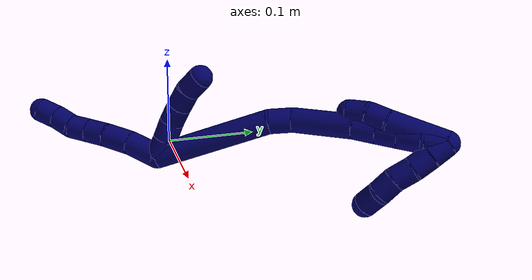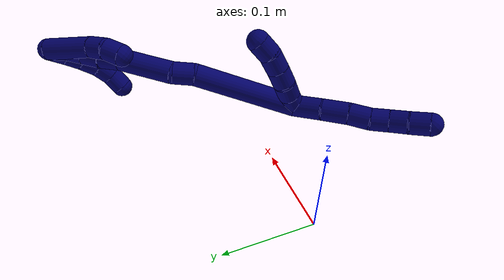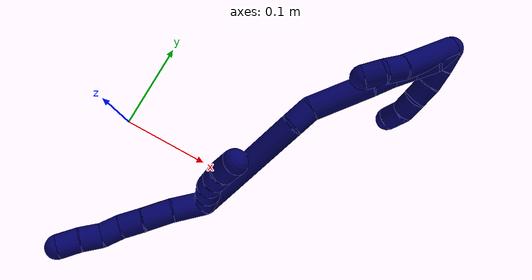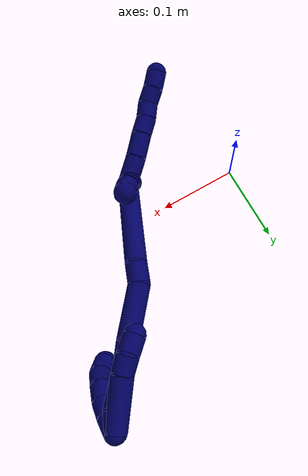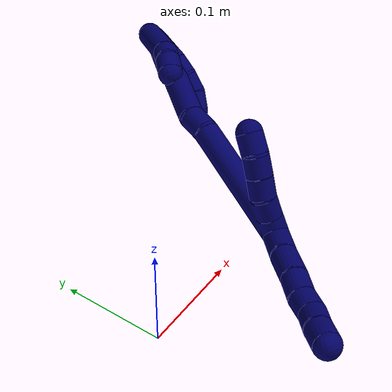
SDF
<sdf version="1.7">
 <world name="default">
  <model name="7">
   <static>0</static>
   <link name="7">
    <collision name="collision-cylinder-e_1_2_8">
     <pose>-0.002982 -0.013951 -0.009524 2.16978 -0.174723 -0.32868</pose>
     <geometry><cylinder><radius>0.0125</radius><length>0.034307</length></cylinder></geometry>
     <surface>
      <friction><ode><mu>1.16</mu><mu2>1.16</mu2><slip1>0</slip1><slip2>0</slip2></ode></friction>
      <contact><ode><kp>1e+06</kp><kd>1</kd><max_vel>0</max_vel><min_depth>0.001</min_depth></ode></contact>
     </surface>
    </collision>
    <visual name="visual-cylinder-e_1_2_8">
     <pose>-0.002982 -0.013951 -0.009524 2.16978 -0.174723 -0.32868</pose>
     <geometry><cylinder><radius>0.0125</radius><length>0.034307</length></cylinder></geometry>
     <material><ambient>0.003922 0 0.403922 1</ambient></material>
    </visual>
    <collision name="collision-cylinder-e_2_8_9">
     <pose>-0.007451 -0.03924 -0.028574 2.26961 -0.100115 -0.214247</pose>
     <geometry><cylinder><radius>0.0125</radius><length>0.029766</length></cylinder></geometry>
     <surface>
      <friction><ode><mu>1.16</mu><mu2>1.16</mu2><slip1>0</slip1><slip2>0</slip2></ode></friction>
      <contact><ode><kp>1e+06</kp><kd>1</kd><max_vel>0</max_vel><min_depth>0.001</min_depth></ode></contact>
     </surface>
    </collision>
    <visual name="visual-cylinder-e_2_8_9">
     <pose>-0.007451 -0.03924 -0.028574 2.26961 -0.100115 -0.214247</pose>
     <geometry><cylinder><radius>0.0125</radius><length>0.029766</length></cylinder></geometry>
     <material><ambient>0.003922 0 0.403922 1</ambient></material>
    </visual>
    <collision name="collision-cylinder-e_3_9_10">
     <pose>-0.010606 -0.058702 -0.04625 2.35774 -0.143868 -0.345223</pose>
     <geometry><cylinder><radius>0.0125</radius><length>0.023255</length></cylinder></geometry>
     <surface>
      <friction><ode><mu>1.16</mu><mu2>1.16</mu2><slip1>0</slip1><slip2>0</slip2></ode></friction>
      <contact><ode><kp>1e+06</kp><kd>1</kd><max_vel>0</max_vel><min_depth>0.001</min_depth></ode></contact>
     </surface>
    </collision>
    <visual name="visual-cylinder-e_3_9_10">
     <pose>-0.010606 -0.058702 -0.04625 2.35774 -0.143868 -0.345223</pose>
     <geometry><cylinder><radius>0.0125</radius><length>0.023255</length></cylinder></geometry>
     <material><ambient>0.003922 0 0.403922 1</ambient></material>
    </visual>
    <collision name="collision-cylinder-e_4_10_11">
     <pose>-0.012115 -0.0745 -0.061132 2.29092 0.015446 0.034096</pose>
     <geometry><cylinder><radius>0.0125</radius><length>0.02042</length></cylinder></geometry>
     <surface>
      <friction><ode><mu>1.16</mu><mu2>1.16</mu2><slip1>0</slip1><slip2>0</slip2></ode></friction>
      <contact><ode><kp>1e+06</kp><kd>1</kd><max_vel>0</max_vel><min_depth>0.001</min_depth></ode></contact>
     </surface>
    </collision>
    <visual name="visual-cylinder-e_4_10_11">
     <pose>-0.012115 -0.0745 -0.061132 2.29092 0.015446 0.034096</pose>
     <geometry><cylinder><radius>0.0125</radius><length>0.02042</length></cylinder></geometry>
     <material><ambient>0.003922 0 0.403922 1</ambient></material>
    </visual>
    <collision name="collision-cylinder-e_5_11_12">
     <pose>-0.013996 -0.091082 -0.072869 2.0827 -0.196917 -0.334448</pose>
     <geometry><cylinder><radius>0.0125</radius><length>0.020839</length></cylinder></geometry>
     <surface>
      <friction><ode><mu>1.16</mu><mu2>1.16</mu2><slip1>0</slip1><slip2>0</slip2></ode></friction>
      <contact><ode><kp>1e+06</kp><kd>1</kd><max_vel>0</max_vel><min_depth>0.001</min_depth></ode></contact>
     </surface>
    </collision>
    <visual name="visual-cylinder-e_5_11_12">
     <pose>-0.013996 -0.091082 -0.072869 2.0827 -0.196917 -0.334448</pose>
     <geometry><cylinder><radius>0.0125</radius><length>0.020839</length></cylinder></geometry>
     <material><ambient>0.003922 0 0.403922 1</ambient></material>
    </visual>
    <collision name="collision-cylinder-e_6_12_6">
     <pose>-0.017005 -0.108892 -0.083746 2.15388 -0.090795 -0.168372</pose>
     <geometry><cylinder><radius>0.0125</radius><length>0.021415</length></cylinder></geometry>
     <surface>
      <friction><ode><mu>1.16</mu><mu2>1.16</mu2><slip1>0</slip1><slip2>0</slip2></ode></friction>
      <contact><ode><kp>1e+06</kp><kd>1</kd><max_vel>0</max_vel><min_depth>0.001</min_depth></ode></contact>
     </surface>
    </collision>
    <visual name="visual-cylinder-e_6_12_6">
     <pose>-0.017005 -0.108892 -0.083746 2.15388 -0.090795 -0.168372</pose>
     <geometry><cylinder><radius>0.0125</radius><length>0.021415</length></cylinder></geometry>
     <material><ambient>0.003922 0 0.403922 1</ambient></material>
    </visual>
    <collision name="collision-cylinder-e_1_2_13">
     <pose>-0.001544 -0.004335 0.008878 0.454259 -0.154975 -0.035885</pose>
     <geometry><cylinder><radius>0.0125</radius><length>0.02</length></cylinder></geometry>
     <surface>
      <friction><ode><mu>1.16</mu><mu2>1.16</mu2><slip1>0</slip1><slip2>0</slip2></ode></friction>
      <contact><ode><kp>1e+06</kp><kd>1</kd><max_vel>0</max_vel><min_depth>0.001</min_depth></ode></contact>
     </surface>
    </collision>
    <visual name="visual-cylinder-e_1_2_13">
     <pose>-0.001544 -0.004335 0.008878 0.454259 -0.154975 -0.035885</pose>
     <geometry><cylinder><radius>0.0125</radius><length>0.02</length></cylinder></geometry>
     <material><ambient>0.003922 0 0.403922 1</ambient></material>
    </visual>
    <collision name="collision-cylinder-e_2_13_14">
     <pose>-0.004542 -0.013517 0.026382 0.511884 -0.146027 -0.038276</pose>
     <geometry><cylinder><radius>0.0125</radius><length>0.02</length></cylinder></geometry>
     <surface>
      <friction><ode><mu>1.16</mu><mu2>1.16</mu2><slip1>0</slip1><slip2>0</slip2></ode></friction>
      <contact><ode><kp>1e+06</kp><kd>1</kd><max_vel>0</max_vel><min_depth>0.001</min_depth></ode></contact>
     </surface>
    </collision>
    <visual name="visual-cylinder-e_2_13_14">
     <pose>-0.004542 -0.013517 0.026382 0.511884 -0.146027 -0.038276</pose>
     <geometry><cylinder><radius>0.0125</radius><length>0.02</length></cylinder></geometry>
     <material><ambient>0.003922 0 0.403922 1</ambient></material>
    </visual>
    <collision name="collision-cylinder-e_3_14_15">
     <pose>-0.005629 -0.021986 0.04432 0.371025 0.036847 0.006916</pose>
     <geometry><cylinder><radius>0.0125</radius><length>0.02</length></cylinder></geometry>
     <surface>
      <friction><ode><mu>1.16</mu><mu2>1.16</mu2><slip1>0</slip1><slip2>0</slip2></ode></friction>
      <contact><ode><kp>1e+06</kp><kd>1</kd><max_vel>0</max_vel><min_depth>0.001</min_depth></ode></contact>
     </surface>
    </collision>
    <visual name="visual-cylinder-e_3_14_15">
     <pose>-0.005629 -0.021986 0.04432 0.371025 0.036847 0.006916</pose>
     <geometry><cylinder><radius>0.0125</radius><length>0.02</length></cylinder></geometry>
     <material><ambient>0.003922 0 0.403922 1</ambient></material>
    </visual>
    <collision name="collision-cylinder-e_4_15_16">
     <pose>-0.005055 -0.028888 0.063079 0.334133 0.020511 0.003459</pose>
     <geometry><cylinder><radius>0.0125</radius><length>0.02</length></cylinder></geometry>
     <surface>
      <friction><ode><mu>1.16</mu><mu2>1.16</mu2><slip1>0</slip1><slip2>0</slip2></ode></friction>
      <contact><ode><kp>1e+06</kp><kd>1</kd><max_vel>0</max_vel><min_depth>0.001</min_depth></ode></contact>
     </surface>
    </collision>
    <visual name="visual-cylinder-e_4_15_16">
     <pose>-0.005055 -0.028888 0.063079 0.334133 0.020511 0.003459</pose>
     <geometry><cylinder><radius>0.0125</radius><length>0.02</length></cylinder></geometry>
     <material><ambient>0.003922 0 0.403922 1</ambient></material>
    </visual>
    <collision name="collision-cylinder-e_5_16_5">
     <pose>-0.004735 -0.033035 0.082485 0.086876 0.011521 0.000501</pose>
     <geometry><cylinder><radius>0.0125</radius><length>0.02</length></cylinder></geometry>
     <surface>
      <friction><ode><mu>1.16</mu><mu2>1.16</mu2><slip1>0</slip1><slip2>0</slip2></ode></friction>
      <contact><ode><kp>1e+06</kp><kd>1</kd><max_vel>0</max_vel><min_depth>0.001</min_depth></ode></contact>
     </surface>
    </collision>
    <visual name="visual-cylinder-e_5_16_5">
     <pose>-0.004735 -0.033035 0.082485 0.086876 0.011521 0.000501</pose>
     <geometry><cylinder><radius>0.0125</radius><length>0.02</length></cylinder></geometry>
     <material><ambient>0.003922 0 0.403922 1</ambient></material>
    </visual>
    <collision name="collision-cylinder-e_1_2_17">
     <pose>-0.012243 0.021179 0.055913 -0.362079 -0.201976 0.037092</pose>
     <geometry><cylinder><radius>0.0125</radius><length>0.122061</length></cylinder></geometry>
     <surface>
      <friction><ode><mu>1.16</mu><mu2>1.16</mu2><slip1>0</slip1><slip2>0</slip2></ode></friction>
      <contact><ode><kp>1e+06</kp><kd>1</kd><max_vel>0</max_vel><min_depth>0.001</min_depth></ode></contact>
     </surface>
    </collision>
    <visual name="visual-cylinder-e_1_2_17">
     <pose>-0.012243 0.021179 0.055913 -0.362079 -0.201976 0.037092</pose>
     <geometry><cylinder><radius>0.0125</radius><length>0.122061</length></cylinder></geometry>
     <material><ambient>0.003922 0 0.403922 1</ambient></material>
    </visual>
    <collision name="collision-cylinder-e_2_17_18">
     <pose>-0.027652 0.049097 0.121179 -0.624426 -0.268013 0.086973</pose>
     <geometry><cylinder><radius>0.0125</radius><length>0.023908</length></cylinder></geometry>
     <surface>
      <friction><ode><mu>1.16</mu><mu2>1.16</mu2><slip1>0</slip1><slip2>0</slip2></ode></friction>
      <contact><ode><kp>1e+06</kp><kd>1</kd><max_vel>0</max_vel><min_depth>0.001</min_depth></ode></contact>
     </surface>
    </collision>
    <visual name="visual-cylinder-e_2_17_18">
     <pose>-0.027652 0.049097 0.121179 -0.624426 -0.268013 0.086973</pose>
     <geometry><cylinder><radius>0.0125</radius><length>0.023908</length></cylinder></geometry>
     <material><ambient>0.003922 0 0.403922 1</ambient></material>
    </visual>
    <collision name="collision-cylinder-e_3_18_19">
     <pose>-0.028765 0.075965 0.154365 -0.701321 0.06568 -0.024032</pose>
     <geometry><cylinder><radius>0.0125</radius><length>0.062529</length></cylinder></geometry>
     <surface>
      <friction><ode><mu>1.16</mu><mu2>1.16</mu2><slip1>0</slip1><slip2>0</slip2></ode></friction>
      <contact><ode><kp>1e+06</kp><kd>1</kd><max_vel>0</max_vel><min_depth>0.001</min_depth></ode></contact>
     </surface>
    </collision>
    <visual name="visual-cylinder-e_3_18_19">
     <pose>-0.028765 0.075965 0.154365 -0.701321 0.06568 -0.024032</pose>
     <geometry><cylinder><radius>0.0125</radius><length>0.062529</length></cylinder></geometry>
     <material><ambient>0.003922 0 0.403922 1</ambient></material>
    </visual>
    <collision name="collision-cylinder-e_4_19_20">
     <pose>-0.026671 0.104741 0.186208 -0.823658 0.003595 -0.00157</pose>
     <geometry><cylinder><radius>0.0125</radius><length>0.023572</length></cylinder></geometry>
     <surface>
      <friction><ode><mu>1.16</mu><mu2>1.16</mu2><slip1>0</slip1><slip2>0</slip2></ode></friction>
      <contact><ode><kp>1e+06</kp><kd>1</kd><max_vel>0</max_vel><min_depth>0.001</min_depth></ode></contact>
     </surface>
    </collision>
    <visual name="visual-cylinder-e_4_19_20">
     <pose>-0.026671 0.104741 0.186208 -0.823658 0.003595 -0.00157</pose>
     <geometry><cylinder><radius>0.0125</radius><length>0.023572</length></cylinder></geometry>
     <material><ambient>0.003922 0 0.403922 1</ambient></material>
    </visual>
    <collision name="collision-cylinder-e_5_20_21">
     <pose>-0.025615 0.121211 0.202039 -0.785487 0.091384 -0.037879</pose>
     <geometry><cylinder><radius>0.0125</radius><length>0.022218</length></cylinder></geometry>
     <surface>
      <friction><ode><mu>1.16</mu><mu2>1.16</mu2><slip1>0</slip1><slip2>0</slip2></ode></friction>
      <contact><ode><kp>1e+06</kp><kd>1</kd><max_vel>0</max_vel><min_depth>0.001</min_depth></ode></contact>
     </surface>
    </collision>
    <visual name="visual-cylinder-e_5_20_21">
     <pose>-0.025615 0.121211 0.202039 -0.785487 0.091384 -0.037879</pose>
     <geometry><cylinder><radius>0.0125</radius><length>0.022218</length></cylinder></geometry>
     <material><ambient>0.003922 0 0.403922 1</ambient></material>
    </visual>
    <collision name="collision-cylinder-e_6_21_22">
     <pose>-0.023437 0.137199 0.218222 -0.77354 0.09929 -0.040467</pose>
     <geometry><cylinder><radius>0.0125</radius><length>0.023489</length></cylinder></geometry>
     <surface>
      <friction><ode><mu>1.16</mu><mu2>1.16</mu2><slip1>0</slip1><slip2>0</slip2></ode></friction>
      <contact><ode><kp>1e+06</kp><kd>1</kd><max_vel>0</max_vel><min_depth>0.001</min_depth></ode></contact>
     </surface>
    </collision>
    <visual name="visual-cylinder-e_6_21_22">
     <pose>-0.023437 0.137199 0.218222 -0.77354 0.09929 -0.040467</pose>
     <geometry><cylinder><radius>0.0125</radius><length>0.023489</length></cylinder></geometry>
     <material><ambient>0.003922 0 0.403922 1</ambient></material>
    </visual>
    <collision name="collision-cylinder-e_7_22_1">
     <pose>-0.024152 0.153111 0.234323 -0.785849 -0.169949 0.070581</pose>
     <geometry><cylinder><radius>0.0125</radius><length>0.022223</length></cylinder></geometry>
     <surface>
      <friction><ode><mu>1.16</mu><mu2>1.16</mu2><slip1>0</slip1><slip2>0</slip2></ode></friction>
      <contact><ode><kp>1e+06</kp><kd>1</kd><max_vel>0</max_vel><min_depth>0.001</min_depth></ode></contact>
     </surface>
    </collision>
    <visual name="visual-cylinder-e_7_22_1">
     <pose>-0.024152 0.153111 0.234323 -0.785849 -0.169949 0.070581</pose>
     <geometry><cylinder><radius>0.0125</radius><length>0.022223</length></cylinder></geometry>
     <material><ambient>0.003922 0 0.403922 1</ambient></material>
    </visual>
    <collision name="collision-cylinder-e_1_1_23">
     <pose>-0.025853 0.136396 0.225649 2.16181 0.006058 0.011361</pose>
     <geometry><cylinder><radius>0.0125</radius><length>0.05892</length></cylinder></geometry>
     <surface>
      <friction><ode><mu>1.16</mu><mu2>1.16</mu2><slip1>0</slip1><slip2>0</slip2></ode></friction>
      <contact><ode><kp>1e+06</kp><kd>1</kd><max_vel>0</max_vel><min_depth>0.001</min_depth></ode></contact>
     </surface>
    </collision>
    <visual name="visual-cylinder-e_1_1_23">
     <pose>-0.025853 0.136396 0.225649 2.16181 0.006058 0.011361</pose>
     <geometry><cylinder><radius>0.0125</radius><length>0.05892</length></cylinder></geometry>
     <material><ambient>0.003922 0 0.403922 1</ambient></material>
    </visual>
    <collision name="collision-cylinder-e_2_23_24">
     <pose>-0.027322 0.103611 0.203322 2.18837 -0.16005 -0.308189</pose>
     <geometry><cylinder><radius>0.0125</radius><length>0.020682</length></cylinder></geometry>
     <surface>
      <friction><ode><mu>1.16</mu><mu2>1.16</mu2><slip1>0</slip1><slip2>0</slip2></ode></friction>
      <contact><ode><kp>1e+06</kp><kd>1</kd><max_vel>0</max_vel><min_depth>0.001</min_depth></ode></contact>
     </surface>
    </collision>
    <visual name="visual-cylinder-e_2_23_24">
     <pose>-0.027322 0.103611 0.203322 2.18837 -0.16005 -0.308189</pose>
     <geometry><cylinder><radius>0.0125</radius><length>0.020682</length></cylinder></geometry>
     <material><ambient>0.003922 0 0.403922 1</ambient></material>
    </visual>
    <collision name="collision-cylinder-e_3_24_4">
     <pose>-0.030967 0.089146 0.189517 2.48038 -0.197059 -0.560863</pose>
     <geometry><cylinder><radius>0.0125</radius><length>0.020398</length></cylinder></geometry>
     <surface>
      <friction><ode><mu>1.16</mu><mu2>1.16</mu2><slip1>0</slip1><slip2>0</slip2></ode></friction>
      <contact><ode><kp>1e+06</kp><kd>1</kd><max_vel>0</max_vel><min_depth>0.001</min_depth></ode></contact>
     </surface>
    </collision>
    <visual name="visual-cylinder-e_3_24_4">
     <pose>-0.030967 0.089146 0.189517 2.48038 -0.197059 -0.560863</pose>
     <geometry><cylinder><radius>0.0125</radius><length>0.020398</length></cylinder></geometry>
     <material><ambient>0.003922 0 0.403922 1</ambient></material>
    </visual>
    <collision name="collision-cylinder-e_1_1_25">
     <pose>-0.021351 0.16073 0.233227 3.12702 0.487061 3.08295</pose>
     <geometry><cylinder><radius>0.0125</radius><length>0.02</length></cylinder></geometry>
     <surface>
      <friction><ode><mu>1.16</mu><mu2>1.16</mu2><slip1>0</slip1><slip2>0</slip2></ode></friction>
      <contact><ode><kp>1e+06</kp><kd>1</kd><max_vel>0</max_vel><min_depth>0.001</min_depth></ode></contact>
     </surface>
    </collision>
    <visual name="visual-cylinder-e_1_1_25">
     <pose>-0.021351 0.16073 0.233227 3.12702 0.487061 3.08295</pose>
     <geometry><cylinder><radius>0.0125</radius><length>0.02</length></cylinder></geometry>
     <material><ambient>0.003922 0 0.403922 1</ambient></material>
    </visual>
    <collision name="collision-cylinder-e_2_25_26">
     <pose>-0.012589 0.160201 0.215271 3.09777 0.420494 2.93692</pose>
     <geometry><cylinder><radius>0.0125</radius><length>0.02</length></cylinder></geometry>
     <surface>
      <friction><ode><mu>1.16</mu><mu2>1.16</mu2><slip1>0</slip1><slip2>0</slip2></ode></friction>
      <contact><ode><kp>1e+06</kp><kd>1</kd><max_vel>0</max_vel><min_depth>0.001</min_depth></ode></contact>
     </surface>
    </collision>
    <visual name="visual-cylinder-e_2_25_26">
     <pose>-0.012589 0.160201 0.215271 3.09777 0.420494 2.93692</pose>
     <geometry><cylinder><radius>0.0125</radius><length>0.02</length></cylinder></geometry>
     <material><ambient>0.003922 0 0.403922 1</ambient></material>
    </visual>
    <collision name="collision-cylinder-e_3_26_27">
     <pose>-0.005821 0.158539 0.196602 3.01013 0.271936 2.24471</pose>
     <geometry><cylinder><radius>0.0125</radius><length>0.02</length></cylinder></geometry>
     <surface>
      <friction><ode><mu>1.16</mu><mu2>1.16</mu2><slip1>0</slip1><slip2>0</slip2></ode></friction>
      <contact><ode><kp>1e+06</kp><kd>1</kd><max_vel>0</max_vel><min_depth>0.001</min_depth></ode></contact>
     </surface>
    </collision>
    <visual name="visual-cylinder-e_3_26_27">
     <pose>-0.005821 0.158539 0.196602 3.01013 0.271936 2.24471</pose>
     <geometry><cylinder><radius>0.0125</radius><length>0.02</length></cylinder></geometry>
     <material><ambient>0.003922 0 0.403922 1</ambient></material>
    </visual>
    <collision name="collision-cylinder-e_4_27_28">
     <pose>-0.001156 0.158261 0.1773 -3.04094 0.199215 -2.20794</pose>
     <geometry><cylinder><radius>0.0125</radius><length>0.02</length></cylinder></geometry>
     <surface>
      <friction><ode><mu>1.16</mu><mu2>1.16</mu2><slip1>0</slip1><slip2>0</slip2></ode></friction>
      <contact><ode><kp>1e+06</kp><kd>1</kd><max_vel>0</max_vel><min_depth>0.001</min_depth></ode></contact>
     </surface>
    </collision>
    <visual name="visual-cylinder-e_4_27_28">
     <pose>-0.001156 0.158261 0.1773 -3.04094 0.199215 -2.20794</pose>
     <geometry><cylinder><radius>0.0125</radius><length>0.02</length></cylinder></geometry>
     <material><ambient>0.003922 0 0.403922 1</ambient></material>
    </visual>
    <collision name="collision-cylinder-e_5_28_3">
     <pose>-0.000405 0.160004 0.157652 -3.06512 -0.123169 2.031</pose>
     <geometry><cylinder><radius>0.0125</radius><length>0.02</length></cylinder></geometry>
     <surface>
      <friction><ode><mu>1.16</mu><mu2>1.16</mu2><slip1>0</slip1><slip2>0</slip2></ode></friction>
      <contact><ode><kp>1e+06</kp><kd>1</kd><max_vel>0</max_vel><min_depth>0.001</min_depth></ode></contact>
     </surface>
    </collision>
    <visual name="visual-cylinder-e_5_28_3">
     <pose>-0.000405 0.160004 0.157652 -3.06512 -0.123169 2.031</pose>
     <geometry><cylinder><radius>0.0125</radius><length>0.02</length></cylinder></geometry>
     <material><ambient>0.003922 0 0.403922 1</ambient></material>
    </visual>
    <collision name="collision-sphere-3">
     <pose>-0.001634 0.160762 0.147757 0 -0 0</pose>
     <geometry><sphere><radius>0.0125</radius></sphere></geometry>
     <surface>
      <friction><ode><mu>1.16</mu><mu2>1.16</mu2><slip1>0</slip1><slip2>0</slip2></ode></friction>
      <contact><ode><kp>1e+06</kp><kd>1</kd><max_vel>0</max_vel><min_depth>0.001</min_depth></ode></contact>
     </surface>
    </collision>
    <visual name="visual-sphere-3">
     <pose>-0.001634 0.160762 0.147757 0 -0 0</pose>
     <geometry><sphere><radius>0.0125</radius></sphere></geometry>
     <material><ambient>0.003922 0 0.403922 1</ambient></material>
    </visual>
    <collision name="collision-sphere-28">
     <pose>0.000823 0.159246 0.167547 0 -0 0</pose>
     <geometry><sphere><radius>0.0125</radius></sphere></geometry>
     <surface>
      <friction><ode><mu>1.16</mu><mu2>1.16</mu2><slip1>0</slip1><slip2>0</slip2></ode></friction>
      <contact><ode><kp>1e+06</kp><kd>1</kd><max_vel>0</max_vel><min_depth>0.001</min_depth></ode></contact>
     </surface>
    </collision>
    <visual name="visual-sphere-28">
     <pose>0.000823 0.159246 0.167547 0 -0 0</pose>
     <geometry><sphere><radius>0.0125</radius></sphere></geometry>
     <material><ambient>0.003922 0 0.403922 1</ambient></material>
    </visual>
    <collision name="collision-sphere-27">
     <pose>-0.003135 0.157276 0.187052 0 -0 0</pose>
     <geometry><sphere><radius>0.0125</radius></sphere></geometry>
     <surface>
      <friction><ode><mu>1.16</mu><mu2>1.16</mu2><slip1>0</slip1><slip2>0</slip2></ode></friction>
      <contact><ode><kp>1e+06</kp><kd>1</kd><max_vel>0</max_vel><min_depth>0.001</min_depth></ode></contact>
     </surface>
    </collision>
    <visual name="visual-sphere-27">
     <pose>-0.003135 0.157276 0.187052 0 -0 0</pose>
     <geometry><sphere><radius>0.0125</radius></sphere></geometry>
     <material><ambient>0.003922 0 0.403922 1</ambient></material>
    </visual>
    <collision name="collision-sphere-26">
     <pose>-0.008507 0.159801 0.206151 0 -0 0</pose>
     <geometry><sphere><radius>0.0125</radius></sphere></geometry>
     <surface>
      <friction><ode><mu>1.16</mu><mu2>1.16</mu2><slip1>0</slip1><slip2>0</slip2></ode></friction>
      <contact><ode><kp>1e+06</kp><kd>1</kd><max_vel>0</max_vel><min_depth>0.001</min_depth></ode></contact>
     </surface>
    </collision>
    <visual name="visual-sphere-26">
     <pose>-0.008507 0.159801 0.206151 0 -0 0</pose>
     <geometry><sphere><radius>0.0125</radius></sphere></geometry>
     <material><ambient>0.003922 0 0.403922 1</ambient></material>
    </visual>
    <collision name="collision-sphere-25">
     <pose>-0.016671 0.160601 0.224391 0 -0 0</pose>
     <geometry><sphere><radius>0.0125</radius></sphere></geometry>
     <surface>
      <friction><ode><mu>1.16</mu><mu2>1.16</mu2><slip1>0</slip1><slip2>0</slip2></ode></friction>
      <contact><ode><kp>1e+06</kp><kd>1</kd><max_vel>0</max_vel><min_depth>0.001</min_depth></ode></contact>
     </surface>
    </collision>
    <visual name="visual-sphere-25">
     <pose>-0.016671 0.160601 0.224391 0 -0 0</pose>
     <geometry><sphere><radius>0.0125</radius></sphere></geometry>
     <material><ambient>0.003922 0 0.403922 1</ambient></material>
    </visual>
    <collision name="collision-sphere-4">
     <pose>-0.032964 0.083004 0.181623 0 -0 0</pose>
     <geometry><sphere><radius>0.0125</radius></sphere></geometry>
     <surface>
      <friction><ode><mu>1.16</mu><mu2>1.16</mu2><slip1>0</slip1><slip2>0</slip2></ode></friction>
      <contact><ode><kp>1e+06</kp><kd>1</kd><max_vel>0</max_vel><min_depth>0.001</min_depth></ode></contact>
     </surface>
    </collision>
    <visual name="visual-sphere-4">
     <pose>-0.032964 0.083004 0.181623 0 -0 0</pose>
     <geometry><sphere><radius>0.0125</radius></sphere></geometry>
     <material><ambient>0.003922 0 0.403922 1</ambient></material>
    </visual>
    <collision name="collision-sphere-24">
     <pose>-0.028971 0.095288 0.197411 0 -0 0</pose>
     <geometry><sphere><radius>0.0125</radius></sphere></geometry>
     <surface>
      <friction><ode><mu>1.16</mu><mu2>1.16</mu2><slip1>0</slip1><slip2>0</slip2></ode></friction>
      <contact><ode><kp>1e+06</kp><kd>1</kd><max_vel>0</max_vel><min_depth>0.001</min_depth></ode></contact>
     </surface>
    </collision>
    <visual name="visual-sphere-24">
     <pose>-0.028971 0.095288 0.197411 0 -0 0</pose>
     <geometry><sphere><radius>0.0125</radius></sphere></geometry>
     <material><ambient>0.003922 0 0.403922 1</ambient></material>
    </visual>
    <collision name="collision-sphere-23">
     <pose>-0.025674 0.111934 0.209234 0 -0 0</pose>
     <geometry><sphere><radius>0.0125</radius></sphere></geometry>
     <surface>
      <friction><ode><mu>1.16</mu><mu2>1.16</mu2><slip1>0</slip1><slip2>0</slip2></ode></friction>
      <contact><ode><kp>1e+06</kp><kd>1</kd><max_vel>0</max_vel><min_depth>0.001</min_depth></ode></contact>
     </surface>
    </collision>
    <visual name="visual-sphere-23">
     <pose>-0.025674 0.111934 0.209234 0 -0 0</pose>
     <geometry><sphere><radius>0.0125</radius></sphere></geometry>
     <material><ambient>0.003922 0 0.403922 1</ambient></material>
    </visual>
    <collision name="collision-sphere-1">
     <pose>-0.026031 0.160859 0.242064 0 -0 0</pose>
     <geometry><sphere><radius>0.0125</radius></sphere></geometry>
     <surface>
      <friction><ode><mu>1.16</mu><mu2>1.16</mu2><slip1>0</slip1><slip2>0</slip2></ode></friction>
      <contact><ode><kp>1e+06</kp><kd>1</kd><max_vel>0</max_vel><min_depth>0.001</min_depth></ode></contact>
     </surface>
    </collision>
    <visual name="visual-sphere-1">
     <pose>-0.026031 0.160859 0.242064 0 -0 0</pose>
     <geometry><sphere><radius>0.0125</radius></sphere></geometry>
     <material><ambient>0.003922 0 0.403922 1</ambient></material>
    </visual>
    <collision name="collision-sphere-22">
     <pose>-0.022273 0.145364 0.226583 0 -0 0</pose>
     <geometry><sphere><radius>0.0125</radius></sphere></geometry>
     <surface>
      <friction><ode><mu>1.16</mu><mu2>1.16</mu2><slip1>0</slip1><slip2>0</slip2></ode></friction>
      <contact><ode><kp>1e+06</kp><kd>1</kd><max_vel>0</max_vel><min_depth>0.001</min_depth></ode></contact>
     </surface>
    </collision>
    <visual name="visual-sphere-22">
     <pose>-0.022273 0.145364 0.226583 0 -0 0</pose>
     <geometry><sphere><radius>0.0125</radius></sphere></geometry>
     <material><ambient>0.003922 0 0.403922 1</ambient></material>
    </visual>
    <collision name="collision-sphere-21">
     <pose>-0.024601 0.129034 0.209861 0 -0 0</pose>
     <geometry><sphere><radius>0.0125</radius></sphere></geometry>
     <surface>
      <friction><ode><mu>1.16</mu><mu2>1.16</mu2><slip1>0</slip1><slip2>0</slip2></ode></friction>
      <contact><ode><kp>1e+06</kp><kd>1</kd><max_vel>0</max_vel><min_depth>0.001</min_depth></ode></contact>
     </surface>
    </collision>
    <visual name="visual-sphere-21">
     <pose>-0.024601 0.129034 0.209861 0 -0 0</pose>
     <geometry><sphere><radius>0.0125</radius></sphere></geometry>
     <material><ambient>0.003922 0 0.403922 1</ambient></material>
    </visual>
    <collision name="collision-sphere-12">
     <pose>-0.016034 -0.09999 -0.077874 0 -0 0</pose>
     <geometry><sphere><radius>0.0125</radius></sphere></geometry>
     <surface>
      <friction><ode><mu>1.16</mu><mu2>1.16</mu2><slip1>0</slip1><slip2>0</slip2></ode></friction>
      <contact><ode><kp>1e+06</kp><kd>1</kd><max_vel>0</max_vel><min_depth>0.001</min_depth></ode></contact>
     </surface>
    </collision>
    <visual name="visual-sphere-12">
     <pose>-0.016034 -0.09999 -0.077874 0 -0 0</pose>
     <geometry><sphere><radius>0.0125</radius></sphere></geometry>
     <material><ambient>0.003922 0 0.403922 1</ambient></material>
    </visual>
    <collision name="collision-sphere-11">
     <pose>-0.011957 -0.082174 -0.067864 0 -0 0</pose>
     <geometry><sphere><radius>0.0125</radius></sphere></geometry>
     <surface>
      <friction><ode><mu>1.16</mu><mu2>1.16</mu2><slip1>0</slip1><slip2>0</slip2></ode></friction>
      <contact><ode><kp>1e+06</kp><kd>1</kd><max_vel>0</max_vel><min_depth>0.001</min_depth></ode></contact>
     </surface>
    </collision>
    <visual name="visual-sphere-11">
     <pose>-0.011957 -0.082174 -0.067864 0 -0 0</pose>
     <geometry><sphere><radius>0.0125</radius></sphere></geometry>
     <material><ambient>0.003922 0 0.403922 1</ambient></material>
    </visual>
    <collision name="collision-sphere-10">
     <pose>-0.012273 -0.066826 -0.054399 0 -0 0</pose>
     <geometry><sphere><radius>0.0125</radius></sphere></geometry>
     <surface>
      <friction><ode><mu>1.16</mu><mu2>1.16</mu2><slip1>0</slip1><slip2>0</slip2></ode></friction>
      <contact><ode><kp>1e+06</kp><kd>1</kd><max_vel>0</max_vel><min_depth>0.001</min_depth></ode></contact>
     </surface>
    </collision>
    <visual name="visual-sphere-10">
     <pose>-0.012273 -0.066826 -0.054399 0 -0 0</pose>
     <geometry><sphere><radius>0.0125</radius></sphere></geometry>
     <material><ambient>0.003922 0 0.403922 1</ambient></material>
    </visual>
    <collision name="collision-sphere-9">
     <pose>-0.008939 -0.050577 -0.038101 0 -0 0</pose>
     <geometry><sphere><radius>0.0125</radius></sphere></geometry>
     <surface>
      <friction><ode><mu>1.16</mu><mu2>1.16</mu2><slip1>0</slip1><slip2>0</slip2></ode></friction>
      <contact><ode><kp>1e+06</kp><kd>1</kd><max_vel>0</max_vel><min_depth>0.001</min_depth></ode></contact>
     </surface>
    </collision>
    <visual name="visual-sphere-9">
     <pose>-0.008939 -0.050577 -0.038101 0 -0 0</pose>
     <geometry><sphere><radius>0.0125</radius></sphere></geometry>
     <material><ambient>0.003922 0 0.403922 1</ambient></material>
    </visual>
    <collision name="collision-sphere-2">
     <geometry><sphere><radius>0.0125</radius></sphere></geometry>
     <surface>
      <friction><ode><mu>1.16</mu><mu2>1.16</mu2><slip1>0</slip1><slip2>0</slip2></ode></friction>
      <contact><ode><kp>1e+06</kp><kd>1</kd><max_vel>0</max_vel><min_depth>0.001</min_depth></ode></contact>
     </surface>
    </collision>
    <visual name="visual-sphere-2">
     <geometry><sphere><radius>0.0125</radius></sphere></geometry>
     <material><ambient>0.003922 0 0.403922 1</ambient></material>
    </visual>
    <collision name="collision-sphere-19">
     <pose>-0.026713 0.096094 0.178199 0 -0 0</pose>
     <geometry><sphere><radius>0.0125</radius></sphere></geometry>
     <surface>
      <friction><ode><mu>1.16</mu><mu2>1.16</mu2><slip1>0</slip1><slip2>0</slip2></ode></friction>
      <contact><ode><kp>1e+06</kp><kd>1</kd><max_vel>0</max_vel><min_depth>0.001</min_depth></ode></contact>
     </surface>
    </collision>
    <visual name="visual-sphere-19">
     <pose>-0.026713 0.096094 0.178199 0 -0 0</pose>
     <geometry><sphere><radius>0.0125</radius></sphere></geometry>
     <material><ambient>0.003922 0 0.403922 1</ambient></material>
    </visual>
    <collision name="collision-sphere-8">
     <pose>-0.005964 -0.027903 -0.019048 0 -0 0</pose>
     <geometry><sphere><radius>0.0125</radius></sphere></geometry>
     <surface>
      <friction><ode><mu>1.16</mu><mu2>1.16</mu2><slip1>0</slip1><slip2>0</slip2></ode></friction>
      <contact><ode><kp>1e+06</kp><kd>1</kd><max_vel>0</max_vel><min_depth>0.001</min_depth></ode></contact>
     </surface>
    </collision>
    <visual name="visual-sphere-8">
     <pose>-0.005964 -0.027903 -0.019048 0 -0 0</pose>
     <geometry><sphere><radius>0.0125</radius></sphere></geometry>
     <material><ambient>0.003922 0 0.403922 1</ambient></material>
    </visual>
    <collision name="collision-sphere-6">
     <pose>-0.017976 -0.117793 -0.089617 0 -0 0</pose>
     <geometry><sphere><radius>0.0125</radius></sphere></geometry>
     <surface>
      <friction><ode><mu>1.16</mu><mu2>1.16</mu2><slip1>0</slip1><slip2>0</slip2></ode></friction>
      <contact><ode><kp>1e+06</kp><kd>1</kd><max_vel>0</max_vel><min_depth>0.001</min_depth></ode></contact>
     </surface>
    </collision>
    <visual name="visual-sphere-6">
     <pose>-0.017976 -0.117793 -0.089617 0 -0 0</pose>
     <geometry><sphere><radius>0.0125</radius></sphere></geometry>
     <material><ambient>0.003922 0 0.403922 1</ambient></material>
    </visual>
    <collision name="collision-sphere-13">
     <pose>-0.003087 -0.008671 0.017756 0 -0 0</pose>
     <geometry><sphere><radius>0.0125</radius></sphere></geometry>
     <surface>
      <friction><ode><mu>1.16</mu><mu2>1.16</mu2><slip1>0</slip1><slip2>0</slip2></ode></friction>
      <contact><ode><kp>1e+06</kp><kd>1</kd><max_vel>0</max_vel><min_depth>0.001</min_depth></ode></contact>
     </surface>
    </collision>
    <visual name="visual-sphere-13">
     <pose>-0.003087 -0.008671 0.017756 0 -0 0</pose>
     <geometry><sphere><radius>0.0125</radius></sphere></geometry>
     <material><ambient>0.003922 0 0.403922 1</ambient></material>
    </visual>
    <collision name="collision-sphere-14">
     <pose>-0.005997 -0.018363 0.035007 0 -0 0</pose>
     <geometry><sphere><radius>0.0125</radius></sphere></geometry>
     <surface>
      <friction><ode><mu>1.16</mu><mu2>1.16</mu2><slip1>0</slip1><slip2>0</slip2></ode></friction>
      <contact><ode><kp>1e+06</kp><kd>1</kd><max_vel>0</max_vel><min_depth>0.001</min_depth></ode></contact>
     </surface>
    </collision>
    <visual name="visual-sphere-14">
     <pose>-0.005997 -0.018363 0.035007 0 -0 0</pose>
     <geometry><sphere><radius>0.0125</radius></sphere></geometry>
     <material><ambient>0.003922 0 0.403922 1</ambient></material>
    </visual>
    <collision name="collision-sphere-15">
     <pose>-0.005261 -0.025609 0.053634 0 -0 0</pose>
     <geometry><sphere><radius>0.0125</radius></sphere></geometry>
     <surface>
      <friction><ode><mu>1.16</mu><mu2>1.16</mu2><slip1>0</slip1><slip2>0</slip2></ode></friction>
      <contact><ode><kp>1e+06</kp><kd>1</kd><max_vel>0</max_vel><min_depth>0.001</min_depth></ode></contact>
     </surface>
    </collision>
    <visual name="visual-sphere-15">
     <pose>-0.005261 -0.025609 0.053634 0 -0 0</pose>
     <geometry><sphere><radius>0.0125</radius></sphere></geometry>
     <material><ambient>0.003922 0 0.403922 1</ambient></material>
    </visual>
    <collision name="collision-sphere-16">
     <pose>-0.00485 -0.032167 0.072524 0 -0 0</pose>
     <geometry><sphere><radius>0.0125</radius></sphere></geometry>
     <surface>
      <friction><ode><mu>1.16</mu><mu2>1.16</mu2><slip1>0</slip1><slip2>0</slip2></ode></friction>
      <contact><ode><kp>1e+06</kp><kd>1</kd><max_vel>0</max_vel><min_depth>0.001</min_depth></ode></contact>
     </surface>
    </collision>
    <visual name="visual-sphere-16">
     <pose>-0.00485 -0.032167 0.072524 0 -0 0</pose>
     <geometry><sphere><radius>0.0125</radius></sphere></geometry>
     <material><ambient>0.003922 0 0.403922 1</ambient></material>
    </visual>
    <collision name="collision-sphere-5">
     <pose>-0.00462 -0.033902 0.092447 0 -0 0</pose>
     <geometry><sphere><radius>0.0125</radius></sphere></geometry>
     <surface>
      <friction><ode><mu>1.16</mu><mu2>1.16</mu2><slip1>0</slip1><slip2>0</slip2></ode></friction>
      <contact><ode><kp>1e+06</kp><kd>1</kd><max_vel>0</max_vel><min_depth>0.001</min_depth></ode></contact>
     </surface>
    </collision>
    <visual name="visual-sphere-5">
     <pose>-0.00462 -0.033902 0.092447 0 -0 0</pose>
     <geometry><sphere><radius>0.0125</radius></sphere></geometry>
     <material><ambient>0.003922 0 0.403922 1</ambient></material>
    </visual>
    <collision name="collision-sphere-17">
     <pose>-0.024486 0.042357 0.111827 0 -0 0</pose>
     <geometry><sphere><radius>0.0125</radius></sphere></geometry>
     <surface>
      <friction><ode><mu>1.16</mu><mu2>1.16</mu2><slip1>0</slip1><slip2>0</slip2></ode></friction>
      <contact><ode><kp>1e+06</kp><kd>1</kd><max_vel>0</max_vel><min_depth>0.001</min_depth></ode></contact>
     </surface>
    </collision>
    <visual name="visual-sphere-17">
     <pose>-0.024486 0.042357 0.111827 0 -0 0</pose>
     <geometry><sphere><radius>0.0125</radius></sphere></geometry>
     <material><ambient>0.003922 0 0.403922 1</ambient></material>
    </visual>
    <collision name="collision-sphere-18">
     <pose>-0.030817 0.055836 0.130531 0 -0 0</pose>
     <geometry><sphere><radius>0.0125</radius></sphere></geometry>
     <surface>
      <friction><ode><mu>1.16</mu><mu2>1.16</mu2><slip1>0</slip1><slip2>0</slip2></ode></friction>
      <contact><ode><kp>1e+06</kp><kd>1</kd><max_vel>0</max_vel><min_depth>0.001</min_depth></ode></contact>
     </surface>
    </collision>
    <visual name="visual-sphere-18">
     <pose>-0.030817 0.055836 0.130531 0 -0 0</pose>
     <geometry><sphere><radius>0.0125</radius></sphere></geometry>
     <material><ambient>0.003922 0 0.403922 1</ambient></material>
    </visual>
    <collision name="collision-sphere-20">
     <pose>-0.026629 0.113388 0.194217 0 -0 0</pose>
     <geometry><sphere><radius>0.0125</radius></sphere></geometry>
     <surface>
      <friction><ode><mu>1.16</mu><mu2>1.16</mu2><slip1>0</slip1><slip2>0</slip2></ode></friction>
      <contact><ode><kp>1e+06</kp><kd>1</kd><max_vel>0</max_vel><min_depth>0.001</min_depth></ode></contact>
     </surface>
    </collision>
    <visual name="visual-sphere-20">
     <pose>-0.026629 0.113388 0.194217 0 -0 0</pose>
     <geometry><sphere><radius>0.0125</radius></sphere></geometry>
     <material><ambient>0.003922 0 0.403922 1</ambient></material>
    </visual>
    <inertial>
     <pose>-0.015586 0.049934 0.10299 0 -0 0</pose>
     <mass>0.75</mass>
     <inertia><ixx>0.000223</ixx><ixy>0</ixy><ixz>0</ixz><iyy>0.000159</iyy><iyz>0</iyz><izz>-5e-06</izz></inertia>
    </inertial>
   </link>
   <pose>0.129624 -0.03856 0.044661 -0.807343 -0.088479 -0.628947</pose>
  </model>
 </world>
</sdf>
